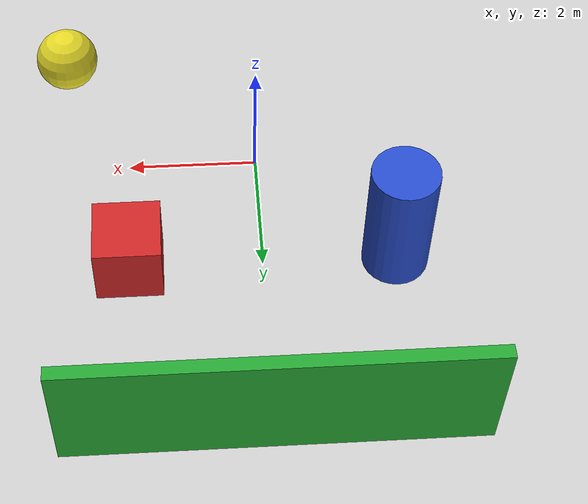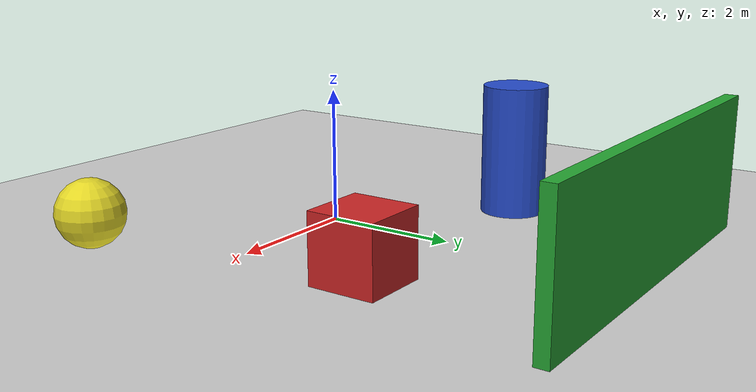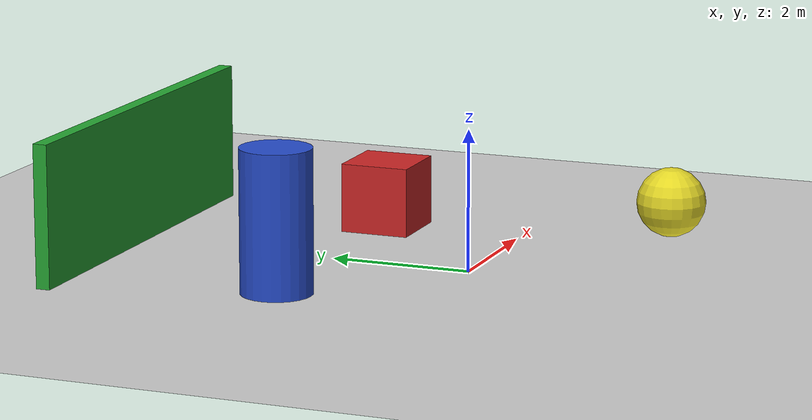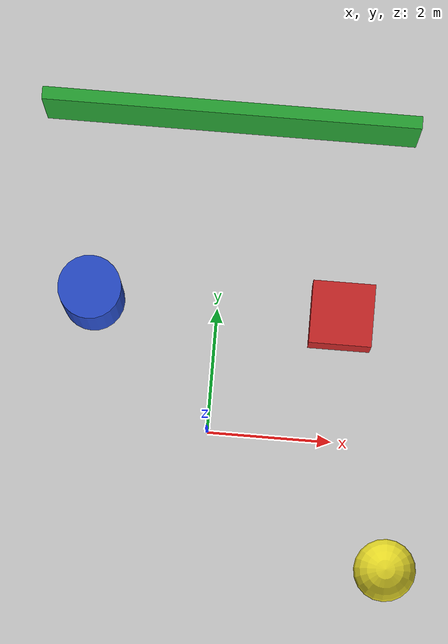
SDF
<?xml version="1.0" ?>
<!--
  简单的 Gazebo 世界文件
  用于测试 Mid-360 激光雷达仿真
  包含基本的地面、光照和一些简单的障碍物
-->
<sdf version="1.6">
  <world name="simple_world">

    <!-- 物理引擎配置 -->
    <physics name="ode_physics" type="ode">
      <max_step_size>0.001</max_step_size>
      <real_time_factor>1.0</real_time_factor>
      <real_time_update_rate>1000</real_time_update_rate>
    </physics>

    <!-- 光照配置 -->
    <light name='sun' type='directional'>
      <pose>0 0 10 0 0 0</pose>
      <cast_shadows>true</cast_shadows>
      <intensity>1</intensity>
      <direction>-0.5 0.1 -0.9</direction>
      <diffuse>0.8 0.8 0.8 1</diffuse>
      <specular>0.2 0.2 0.2 1</specular>
      <attenuation>
        <range>1000</range>
        <constant>0.9</constant>
        <linear>0.01</linear>
        <quadratic>0.001</quadratic>
      </attenuation>
    </light>

    <!-- 场景配置 -->
    <scene>
      <ambient>0.4 0.4 0.4 1</ambient>
      <background>0.7 0.7 0.7 1</background>
      <shadows>true</shadows>
    </scene>

    <!-- 重力配置 -->
    <gravity>0 0 -9.8</gravity>

    <!-- 地面 -->
    <model name="ground_plane">
      <static>true</static>
      <link name="link">
        <collision name="collision">
          <geometry>
            <plane>
              <normal>0 0 1</normal>
              <size>20 20</size>
            </plane>
          </geometry>
          <surface>
            <contact>
              <collide_bitmask>65535</collide_bitmask>
              <ode>
                <mu>100</mu>
                <mu2>50</mu2>
              </ode>
            </contact>
            <friction>
              <ode>
                <mu>100</mu>
                <mu2>50</mu2>
              </ode>
            </friction>
          </surface>
        </collision>
        <visual name="visual">
          <geometry>
            <plane>
              <normal>0 0 1</normal>
              <size>20 20</size>
            </plane>
          </geometry>
          <material>
            <script>
              <uri>file://media/materials/scripts/gazebo.material</uri>
              <name>Gazebo/Grey</name>
            </script>
          </material>
        </visual>
      </link>
    </model>

    <!-- 障碍物1：立方体 -->
    <model name="box1">
      <pose>2 2 0.5 0 0 0</pose>
      <static>true</static>
      <link name="link">
        <collision name="collision">
          <geometry>
            <box>
              <size>1 1 1</size>
            </box>
          </geometry>
        </collision>
        <visual name="visual">
          <geometry>
            <box>
              <size>1 1 1</size>
            </box>
          </geometry>
          <material>
            <script>
              <uri>file://media/materials/scripts/gazebo.material</uri>
              <name>Gazebo/Red</name>
            </script>
          </material>
        </visual>
      </link>
    </model>

    <!-- 障碍物2：圆柱体 -->
    <model name="cylinder1">
      <pose>-2 2 1 0 0 0</pose>
      <static>true</static>
      <link name="link">
        <collision name="collision">
          <geometry>
            <cylinder>
              <radius>0.5</radius>
              <length>2</length>
            </cylinder>
          </geometry>
        </collision>
        <visual name="visual">
          <geometry>
            <cylinder>
              <radius>0.5</radius>
              <length>2</length>
            </cylinder>
          </geometry>
          <material>
            <script>
              <uri>file://media/materials/scripts/gazebo.material</uri>
              <name>Gazebo/Blue</name>
            </script>
          </material>
        </visual>
      </link>
    </model>

    <!-- 障碍物3：墙壁 -->
    <model name="wall1">
      <pose>0 5 1 0 0 0</pose>
      <static>true</static>
      <link name="link">
        <collision name="collision">
          <geometry>
            <box>
              <size>6 0.2 2</size>
            </box>
          </geometry>
        </collision>
        <visual name="visual">
          <geometry>
            <box>
              <size>6 0.2 2</size>
            </box>
          </geometry>
          <material>
            <script>
              <uri>file://media/materials/scripts/gazebo.material</uri>
              <name>Gazebo/Green</name>
            </script>
          </material>
        </visual>
      </link>
    </model>

    <!-- 障碍物4：球体 -->
    <model name="sphere1">
      <pose>3 -2 0.5 0 0 0</pose>
      <static>true</static>
      <link name="link">
        <collision name="collision">
          <geometry>
            <sphere>
              <radius>0.5</radius>
            </sphere>
          </geometry>
        </collision>
        <visual name="visual">
          <geometry>
            <sphere>
              <radius>0.5</radius>
            </sphere>
          </geometry>
          <material>
            <script>
              <uri>file://media/materials/scripts/gazebo.material</uri>
              <name>Gazebo/Yellow</name>
            </script>
          </material>
        </visual>
      </link>
    </model>

    <!-- GUI 配置 -->
    <gui fullscreen='0'>
      <camera name='user_camera'>
        <pose>5 -5 3 0 0.275643 2.35619</pose>
        <view_controller>orbit</view_controller>
        <projection_type>perspective</projection_type>
      </camera>
    </gui>

  </world>
</sdf>
